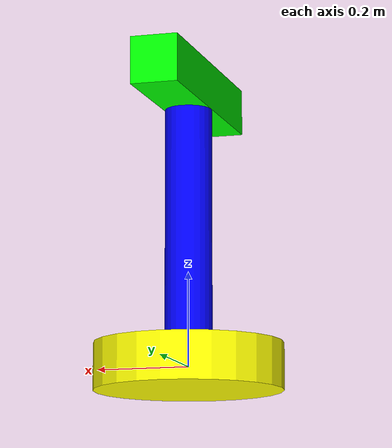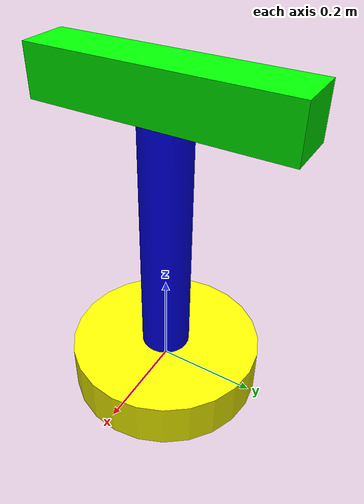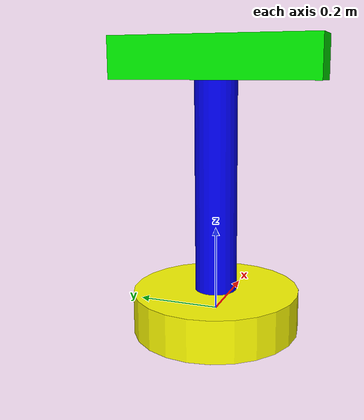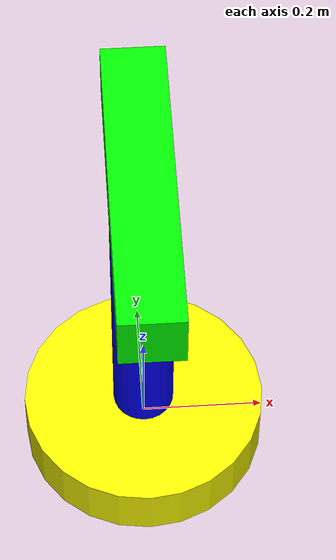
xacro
<?xml version="1.0"?>
<robot xmlns:xacro="http://www.ros.org/wiki/xacro" name="robot">

  <!-- Properties -->
  <xacro:property name="base_len" value="0.1"/>
  <xacro:property name="base_rad" value="0.2"/>
  <xacro:property name="rot_len" value="0.5"/>
  <xacro:property name="rot_rad" value="0.05"/>
  <xacro:property name="trans_size" value="0.1 0.5 0.1"/>

  <!-- Base Link -->
  <link name="base">
    <visual>
      <origin xyz="0 0 0" rpy="0 0 0"/>
      <geometry>
        <cylinder length="${base_len}" radius="${base_rad}"/>
      </geometry>
      <material name="yellow">
        <color rgba="1 1 0 1"/>
      </material>
    </visual>
    <collision>
      <geometry>
        <cylinder length="${base_len}" radius="${base_rad}"/>
      </geometry>
    </collision>
    <inertial>
      <mass value="1.0"/>
      <inertia ixx="0.0025" ixy="0.0" ixz="0.0" iyy="0.0025" iyz="0.0" izz="0.0016"/>
    </inertial>
  </link>

  <!-- Rotating Link -->
  <link name="rot">
    <visual>
      <origin xyz="0 0 0.15" rpy="0 0 0"/>
      <geometry>
        <cylinder length="${rot_len}" radius="${rot_rad}"/>
      </geometry>
      <material name="blue">
        <color rgba="0 0 1 1"/>
      </material>
    </visual>
    <collision>
      <geometry>
        <cylinder length="${rot_len}" radius="${rot_rad}"/>
      </geometry>
    </collision>
    <inertial>
      <mass value="1.0"/>
      <inertia ixx="0.0025" ixy="0.0" ixz="0.0" iyy="0.0025" iyz="0.0" izz="0.0016"/>
    </inertial>
  </link>

  <!-- Joint 1: Base to Rotating Link (Rotational) -->
  <joint name="base_to_rot" type="continuous">
    <parent link="base"/>
    <child link="rot"/>
    <origin xyz="0 0 0.15" rpy="0 0 0"/>
    <axis xyz="0 0 1"/>
  </joint>

  <!-- Translational Link -->
  <link name="trans">
    <visual>
      <origin xyz="0 0 0.05" rpy="0 0 0"/>
      <geometry>
        <box size="${trans_size}"/>
      </geometry>
      <material name="green">
        <color rgba="0 1 0 1"/>
      </material>
    </visual>
    <collision>
      <geometry>
        <box size="${trans_size}"/>
      </geometry>
    </collision>
    <inertial>
      <mass value="1.0"/>
      <inertia ixx="0.0025" ixy="0.0" ixz="0.0" iyy="0.0025" iyz="0.0" izz="0.0016"/>
    </inertial>
  </link>

  <!-- Joint 2: Rotating Link to Translational Link (Translational) -->
  <joint name="rot_to_trans" type="prismatic">
    <parent link="rot"/>
    <child link="trans"/>
    <origin xyz="0 0 0.4" rpy="0 0 0"/>
    <axis xyz="0 1 0"/>
    <limit lower="-0.25" upper="0.25" effort="100" velocity="1.0"/>
  </joint>

  <ros2_control name="CustomHardware" type="system">
    <hardware>
      <plugin>custom_hardware/CustomHardware</plugin>
    </hardware>
    <joint name="base_to_rot">
      <command_interface name="position">
        <param name="min">-3.14</param>
        <param name="max">3.14</param>
      </command_interface>
      <state_interface name="position"/>
      <state_interface name="velocity"/>
    </joint>
    <joint name="rot_to_trans">
      <command_interface name="position">
        <param name="min">-1.0</param>
        <param name="max">1.0</param>
      </command_interface>
      <state_interface name="position"/>
      <state_interface name="velocity"/>
    </joint>
  </ros2_control>

  <gazebo>
    <plugin name="joint_state_publisher" filename="libgazebo_ros_joint_state_publisher.so">
      <alwaysOn>true</alwaysOn>
      <updateRate>100.0</updateRate>
    </plugin>
    <plugin name="joint_controller" filename="libgazebo_ros_joint_controller.so">
      <alwaysOn>true</alwaysOn>
      <updateRate>100.0</updateRate>
      <joint_name>base_to_rot</joint_name>
      <joint_name>rot_to_trans</joint_name>
      <control_type>position</control_type>
    </plugin>
  </gazebo>
</robot>
